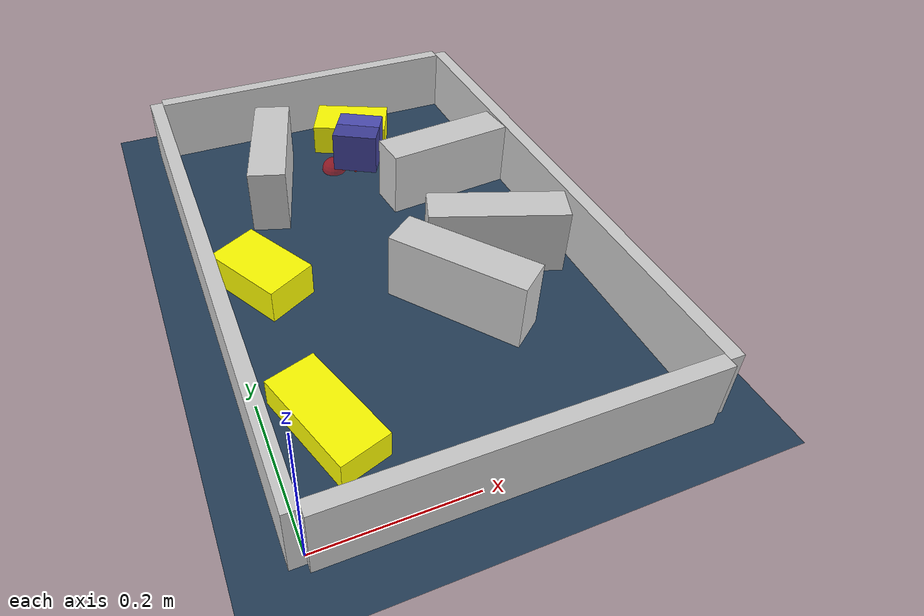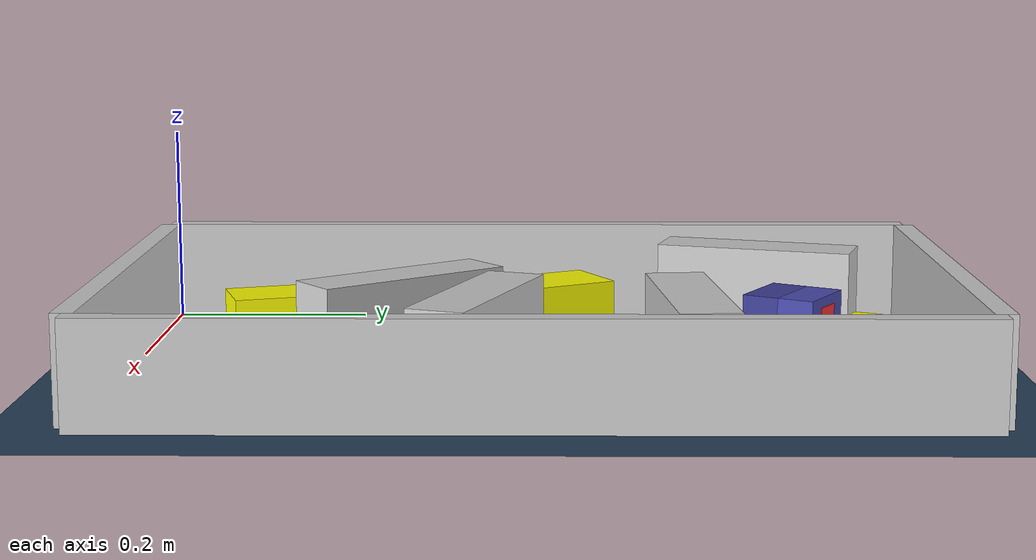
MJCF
<?xml version='1.0' encoding='utf-8'?>
<mujoco model="real_buildable">
  <compiler angle="degree" />
  <option timestep="0.002" integrator="implicitfast" iterations="100" cone="elliptic" />
  <default>
    <geom density="1" />
  </default>
  <asset>
    <texture builtin="gradient" height="3072" rgb1="0.3 0.5 0.7" rgb2="0 0 0" type="skybox" width="512" />
    <texture builtin="checker" height="300" mark="edge" markrgb="0.8 0.8 0.8" name="groundplane" rgb1="0.2 0.3 0.4" rgb2="0.1 0.2 0.3" type="2d" width="300" />
    <material name="groundplane" reflectance="0.2" texrepeat="5 5" texture="groundplane" texuniform="true" />
  </asset>
  <worldbody>
    <light dir="0 0 -1" directional="true" pos="0 0 1.5" />
    <geom name="floor" type="plane" condim="4" friction="0.5 0.005 0.001" material="groundplane" size="0 0 0.05" />
    <body name="walls">
      <geom name="wall_boundary_left" type="box" condim="4" friction="1.0 0.005 0.0001" rgba="0.8 0.8 0.8 1" pos="-0.010000 0.387500 0.050000" euler="0 0 0.000000" size="0.010000 0.397500 0.050000" />
      <geom name="wall_boundary_right" type="box" condim="4" friction="1.0 0.005 0.0001" rgba="0.8 0.8 0.8 1" pos="0.500000 0.387500 0.050000" euler="0 0 0.000000" size="0.010000 0.397500 0.050000" />
      <geom name="wall_boundary_bottom" type="box" condim="4" friction="1.0 0.005 0.0001" rgba="0.8 0.8 0.8 1" pos="0.245000 -0.010000 0.050000" euler="0 0 0.000000" size="0.245000 0.010000 0.050000" />
      <geom name="wall_boundary_top" type="box" condim="4" friction="1.0 0.005 0.0001" rgba="0.8 0.8 0.8 1" pos="0.245000 0.785000 0.050000" euler="0 0 0.000000" size="0.245000 0.010000 0.050000" />
      <geom name="wall_inner_1" type="box" condim="4" friction="1.0 0.005 0.0001" rgba="0.8 0.8 0.8 1" pos="0.299172 0.262556 0.050000" euler="0 0 -52.520843" size="0.097500 0.027500 0.050000" />
      <geom name="wall_inner_2" type="box" condim="4" friction="1.0 0.005 0.0001" rgba="0.8 0.8 0.8 1" pos="0.384918 0.336265 0.050000" euler="0 0 -20.095559" size="0.097500 0.027500 0.050000" />
      <geom name="wall_inner_3" type="box" condim="4" friction="1.0 0.005 0.0001" rgba="0.8 0.8 0.8 1" pos="0.390000 0.528000 0.050000" euler="0 0 5.700000" size="0.097500 0.027500 0.050000" />
      <geom name="wall_inner_4" type="box" condim="4" friction="1.0 0.005 0.0001" rgba="0.8 0.8 0.8 1" pos="0.135000 0.613000 0.050000" euler="0 0 72.500000" size="0.097500 0.027500 0.050000" />
    </body>
    <body name="car" pos="0.28581751978627368 0.63045297634575337 0.01" quat="0.86691565560515527 0 0 0.49845485860475247">
      <freejoint name="car_freejoint" />
      <inertial pos="0 0 0.0375" mass="0.35" diaginertia="0.000266 0.000266 0.000286" />
      <geom name="front_chassis_collision" type="box" pos="0.0175 0 0.0375" size="0.0175 0.035 0.0325" rgba="0.3 0.3 0.7 1" />
      <geom name="rear_chassis_collision" type="box" pos="-0.0175 0 0.0375" size="0.0175 0.035 0.0325" rgba="0.25 0.25 0.6 1" />
      <geom name="front_marker" type="box" pos="0.034 0 0.0505" size="0.002 0.015 0.01" rgba="1 0.2 0.2 1" contype="0" conaffinity="0" />
      <body name="rear_support_body" pos="-0.03 0 0.0025">
        <joint name="rear_caster_joint" type="ball" damping="0.0001" />
        <inertial pos="0 0 0" mass="0.025" diaginertia="0.000001 0.000001 0.000001" />
        <geom name="rear_support" type="sphere" pos="0 0 0" size="0.0025" friction="0 0 0" rgba="0.7 0.1 0.1 1" />
      </body>
      <body name="front_support_body" pos="0.03 0 0.0025">
        <joint name="front_caster_joint" type="ball" damping="0.0001" />
        <inertial pos="0 0 0" mass="0.025" diaginertia="0.000001 0.000001 0.000001" />
        <geom name="front_support" type="sphere" pos="0 0 0" size="0.0025" friction="0 0 0" rgba="0.1 0.7 0.1 1" />
      </body>
      <body name="left_wheel" pos="0 0.0375 0.015">
        <inertial pos="0 0 0" mass="0.05" diaginertia="0.000003 0.000006 0.000003" />
        <joint name="left_wheel_joint" type="hinge" axis="0 1 0" damping="0.01" armature="0.0001" />
        <geom name="left_wheel_collision" type="cylinder" size="0.015 0.0005" euler="90 0 0" rgba="0.1 0.1 0.1 1" />
      </body>
      <body name="right_wheel" pos="0 -0.0375 0.015">
        <inertial pos="0 0 0" mass="0.05" diaginertia="0.000003 0.000006 0.000003" />
        <joint name="right_wheel_joint" type="hinge" axis="0 1 0" damping="0.01" armature="0.0001" />
        <geom name="right_wheel_collision" type="cylinder" size="0.015 0.0005" euler="90 0 0" rgba="0.1 0.1 0.1 1" />
      </body>
    </body>
    <body name="obstacle_0_movable">
      <geom name="obstacle_0_movable" condim="4" pos="0.061671443041293461 0.39930914185396993 0.025000000000000001" friction="1 0.005 0.0001" rgba="1 1 0 1" size="0.037500 0.060000 0.025000" type="box" mass="0.1" quat="0.9693584618411778 0 0 0.24565050876581929" />
      <joint type="free" />
    </body>
    <body name="obstacle_1_movable">
      <geom name="obstacle_1_movable" condim="4" pos="0.29995432479757855 0.70716933842056018 0.025000000000000001" friction="1 0.005 0.0001" rgba="1 1 0 1" size="0.037500 0.060000 0.025000" type="box" mass="0.1" quat="0.84358320214645122 0 0 0.53699849260155252" />
      <joint type="free" />
    </body>
    <body name="obstacle_2_movable">
      <geom name="obstacle_2_movable" condim="4" pos="0.069543746906730999 0.13922638780695568 0.02" friction="1 0.005 0.0001" rgba="1 1 0 1" size="0.035000 0.075000 0.020000" type="box" mass="0.1" quat="0.98814308116708682 0 0 0.1535358301557527" />
      <joint type="free" />
    </body>
    <site name="goal" type="sphere" pos="0.245000 0.640000 0.0" size="0.02" rgba="1 0 0 0.5" />
  </worldbody>
  <actuator>
    <velocity name="left_wheel_drive" joint="left_wheel_joint" ctrlrange="-25 25" kv="0.75" forcerange="-0.5 0.5" />
    <velocity name="right_wheel_drive" joint="right_wheel_joint" ctrlrange="-25 25" kv="0.75" forcerange="-0.5 0.5" />
  </actuator>
</mujoco>
